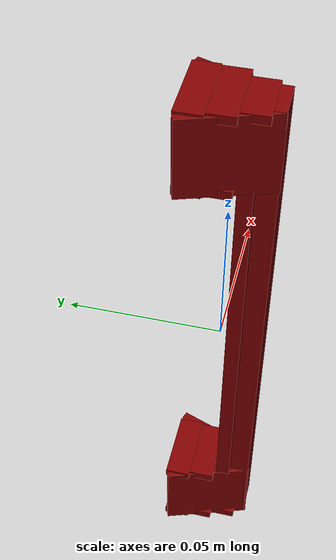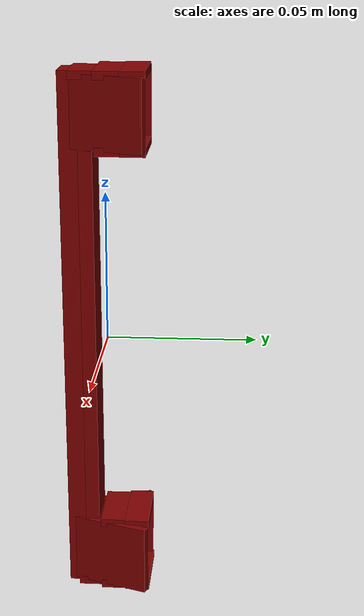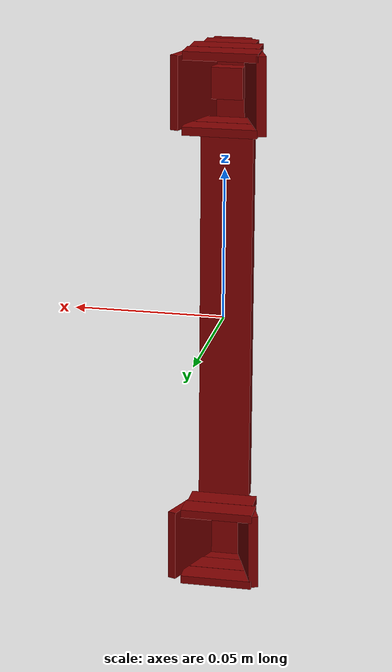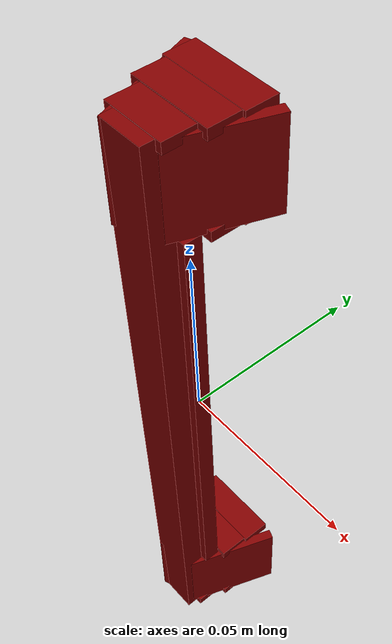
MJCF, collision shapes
<?xml version='1.0' encoding='UTF-8'?>
<mujoco model="model">
  <option timestep="0.002" gravity="0.0 0.0 -9.81"/>
  <compiler angle="radian"/>
  <asset>
    <mesh file="visuals/CabinetHandle007.obj" name="CabinetHandle007_vis"/>
    <texture file="visuals/T_BC001.png" name="tex" type="2d"/>
    <material name="mat" rgba="1 1 1 1.0" texture="tex" shininess="-1023.0" specular="0.3103448502657381"/>
  </asset>
  <default>
    <default class="visual">
      <geom conaffinity="0" contype="0" group="1" type="mesh"/>
    </default>
    <default class="collision">
      <geom group="0" rgba="0.5 0 0 0.5" density="1.0" solref="0.004 1" solimp="0.998 0.998 0.001"/>
    </default>
    <default class="spawn">
      <geom group="0" rgba="1 1 1 0.5" contype="0" conaffinity="0"/>
      <site group="0" rgba="1 1 1 0.5"/>
    </default>
    <default class="region">
      <geom group="1" conaffinity="0" contype="0" rgba="0 1 0 0" mass="0"/>
    </default>
  </default>
  <worldbody>
    <body>
      <body name="object">
        <geom mesh="CabinetHandle007_vis" type="mesh" solimp="0.998 0.998 0.001" solref="0.001 1" friction="0.95 0.3 0.1" class="visual" material="mat"/>
        <geom type="box" pos="-0.00000000 -0.00551508 0.00036509" size="0.00854943785816431 0.002329739974811673 0.06482838839292526" quat="1.0 0.0 0.0 0.0" class="collision"/>
        <geom type="box" pos="0.00017495 -0.00816303 0.07738175" size="0.005112044978886843 0.0050958371721208096 0.005150381941348314" quat="1.0 0.0 0.0 0.0" class="collision"/>
        <geom type="box" pos="-0.00902875 -0.00011983 0.07740620" size="0.001668220036663115 0.014624437317252159 0.012772087007761002" quat="0.9861031174659729 -0.0031931994017213583 0.006876656785607338 0.1659613400697708" class="collision"/>
        <geom type="box" pos="-0.00074393 0.01002685 0.08943749" size="0.011971806176006794 0.0041505079716444016 0.0013836831785738468" quat="1.0 0.0 0.0 0.0" class="collision"/>
        <geom type="box" pos="-0.00046959 0.00165934 0.08943749" size="0.01106593944132328 0.004150512628257275 0.0013836827129125595" quat="1.0 0.0 0.0 0.0" class="collision"/>
        <geom type="box" pos="0.00894219 0.00054114 0.07738248" size="0.014151065610349178 0.0013836766593158245 0.011971814557909966" quat="0.5701012015342712 0.000959118187893182 -0.0013821853790432215 -0.8215727806091309" class="collision"/>
        <geom type="box" pos="-0.00040608 -0.00659640 0.08911108" size="0.008338549174368382 0.004150512628257275 0.0013836811995133758" quat="1.0 0.0 0.0 0.0" class="collision"/>
        <geom type="box" pos="0.00025180 -0.01100781 0.00022251" size="0.006054001860320568 0.0032033990137279034 0.09008895605802536" quat="1.0 0.0 0.0 0.0" class="collision"/>
        <geom type="box" pos="-0.00854166 -0.00030181 -0.07712839" size="0.001668220036663115 0.014624437317252159 0.012772087007761002" quat="0.9861031174659729 -0.0031931994017213583 0.006876656785607338 0.1659613400697708" class="collision"/>
        <geom type="box" pos="0.00942927 0.00035917 -0.07715212" size="0.014151065610349178 0.0013836766593158245 0.011971814557909966" quat="0.5701012015342712 0.000959118187893182 -0.0013821853790432215 -0.8215727806091309" class="collision"/>
        <geom type="box" pos="-0.00074392 0.01002685 0.06536596" size="0.011971809901297092 0.004150509834289551 0.0013836831785738468" quat="1.0 0.0 0.0 0.0" class="collision"/>
        <geom type="box" pos="-0.00046957 0.00165934 0.06536596" size="0.011065945960581303 0.004150512628257275 0.0013836827129125595" quat="1.0 0.0 0.0 0.0" class="collision"/>
        <geom type="box" pos="-0.00074385 0.01002685 -0.06513081" size="0.011971810832619667 0.004150511231273413 0.0013836831785738468" quat="1.0 0.0 0.0 0.0" class="collision"/>
        <geom type="box" pos="-0.00046950 0.00165933 -0.06513081" size="0.011065949685871601 0.004150512628257275 0.0013836827129125595" quat="1.0 0.0 0.0 0.0" class="collision"/>
        <geom type="box" pos="-0.00074383 0.01002684 -0.08911131" size="0.011971812695264816 0.004150512162595987 0.0013836831785738468" quat="1.0 0.0 0.0 0.0" class="collision"/>
        <geom type="box" pos="-0.00046949 0.00165933 -0.08911131" size="0.011065952479839325 0.004150512628257275 0.0013836827129125595" quat="1.0 0.0 0.0 0.0" class="collision"/>
        <geom type="box" pos="-0.00040598 -0.00659641 -0.08943771" size="0.008338549174368382 0.004150512628257275 0.0013836811995133758" quat="1.0 0.0 0.0 0.0" class="collision"/>
        <geom class="region" name="reg_main" type="box" pos="0.0 0.00012150500000000005 -0.00015949999999999992" size="0.01580722 0.015089945 0.09139868000000001"/>
      </body>
    </body>
  </worldbody>
  <actuator/>
</mujoco>
